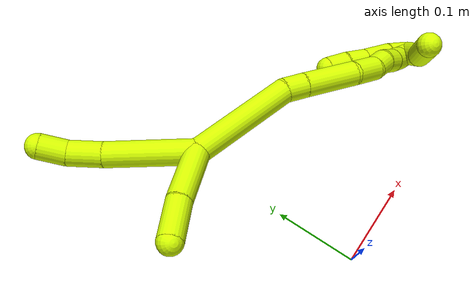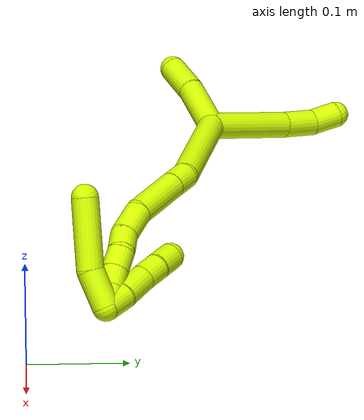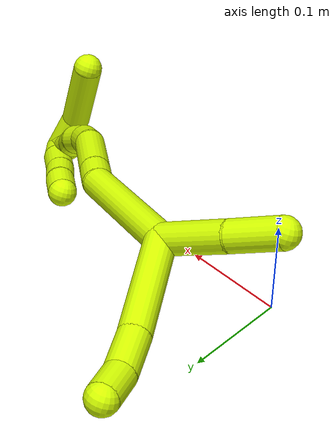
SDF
<sdf version="1.7">
 <world name="default">
  <model name="15">
   <static>0</static>
   <link name="15">
    <collision name="collision-cylinder-e_1_2_8">
     <pose>-0.019177 0.034173 -0.020029 -2.10093 -0.450888 0.761442</pose>
     <geometry><cylinder><radius>0.0125</radius><length>0.088016</length></cylinder></geometry>
     <surface>
      <friction><ode><mu>1.16</mu><mu2>1.16</mu2><slip1>0</slip1><slip2>0</slip2></ode></friction>
      <contact><ode><kp>1e+06</kp><kd>1</kd><max_vel>0</max_vel><min_depth>0.001</min_depth></ode></contact>
     </surface>
    </collision>
    <visual name="visual-cylinder-e_1_2_8">
     <pose>-0.019177 0.034173 -0.020029 -2.10093 -0.450888 0.761442</pose>
     <geometry><cylinder><radius>0.0125</radius><length>0.088016</length></cylinder></geometry>
     <material><ambient>0.835294 1 0 1</ambient></material>
    </visual>
    <collision name="collision-cylinder-e_2_8_9">
     <pose>-0.044866 0.082526 -0.047098 -2.03161 -0.39023 0.617153</pose>
     <geometry><cylinder><radius>0.0125</radius><length>0.034238</length></cylinder></geometry>
     <surface>
      <friction><ode><mu>1.16</mu><mu2>1.16</mu2><slip1>0</slip1><slip2>0</slip2></ode></friction>
      <contact><ode><kp>1e+06</kp><kd>1</kd><max_vel>0</max_vel><min_depth>0.001</min_depth></ode></contact>
     </surface>
    </collision>
    <visual name="visual-cylinder-e_2_8_9">
     <pose>-0.044866 0.082526 -0.047098 -2.03161 -0.39023 0.617153</pose>
     <geometry><cylinder><radius>0.0125</radius><length>0.034238</length></cylinder></geometry>
     <material><ambient>0.835294 1 0 1</ambient></material>
    </visual>
    <collision name="collision-cylinder-e_3_9_6">
     <pose>-0.054659 0.109879 -0.057003 -1.78498 -0.23874 0.295499</pose>
     <geometry><cylinder><radius>0.0125</radius><length>0.027746</length></cylinder></geometry>
     <surface>
      <friction><ode><mu>1.16</mu><mu2>1.16</mu2><slip1>0</slip1><slip2>0</slip2></ode></friction>
      <contact><ode><kp>1e+06</kp><kd>1</kd><max_vel>0</max_vel><min_depth>0.001</min_depth></ode></contact>
     </surface>
    </collision>
    <visual name="visual-cylinder-e_3_9_6">
     <pose>-0.054659 0.109879 -0.057003 -1.78498 -0.23874 0.295499</pose>
     <geometry><cylinder><radius>0.0125</radius><length>0.027746</length></cylinder></geometry>
     <material><ambient>0.835294 1 0 1</ambient></material>
    </visual>
    <collision name="collision-cylinder-e_1_2_10">
     <pose>-0.025168 0.00186 0.015071 -0.122776 -1.0279 0.069374</pose>
     <geometry><cylinder><radius>0.0125</radius><length>0.058788</length></cylinder></geometry>
     <surface>
      <friction><ode><mu>1.16</mu><mu2>1.16</mu2><slip1>0</slip1><slip2>0</slip2></ode></friction>
      <contact><ode><kp>1e+06</kp><kd>1</kd><max_vel>0</max_vel><min_depth>0.001</min_depth></ode></contact>
     </surface>
    </collision>
    <visual name="visual-cylinder-e_1_2_10">
     <pose>-0.025168 0.00186 0.015071 -0.122776 -1.0279 0.069374</pose>
     <geometry><cylinder><radius>0.0125</radius><length>0.058788</length></cylinder></geometry>
     <material><ambient>0.835294 1 0 1</ambient></material>
    </visual>
    <collision name="collision-cylinder-e_2_10_5">
     <pose>-0.068051 0.002454 0.04059 0.12055 -1.03475 -0.068659</pose>
     <geometry><cylinder><radius>0.0125</radius><length>0.041212</length></cylinder></geometry>
     <surface>
      <friction><ode><mu>1.16</mu><mu2>1.16</mu2><slip1>0</slip1><slip2>0</slip2></ode></friction>
      <contact><ode><kp>1e+06</kp><kd>1</kd><max_vel>0</max_vel><min_depth>0.001</min_depth></ode></contact>
     </surface>
    </collision>
    <visual name="visual-cylinder-e_2_10_5">
     <pose>-0.068051 0.002454 0.04059 0.12055 -1.03475 -0.068659</pose>
     <geometry><cylinder><radius>0.0125</radius><length>0.041212</length></cylinder></geometry>
     <material><ambient>0.835294 1 0 1</ambient></material>
    </visual>
    <collision name="collision-cylinder-e_1_2_11">
     <pose>0.047662 -0.027014 -0.005123 1.75821 1.04756 1.21798</pose>
     <geometry><cylinder><radius>0.0125</radius><length>0.110048</length></cylinder></geometry>
     <surface>
      <friction><ode><mu>1.16</mu><mu2>1.16</mu2><slip1>0</slip1><slip2>0</slip2></ode></friction>
      <contact><ode><kp>1e+06</kp><kd>1</kd><max_vel>0</max_vel><min_depth>0.001</min_depth></ode></contact>
     </surface>
    </collision>
    <visual name="visual-cylinder-e_1_2_11">
     <pose>0.047662 -0.027014 -0.005123 1.75821 1.04756 1.21798</pose>
     <geometry><cylinder><radius>0.0125</radius><length>0.110048</length></cylinder></geometry>
     <material><ambient>0.835294 1 0 1</ambient></material>
    </visual>
    <collision name="collision-cylinder-e_2_11_12">
     <pose>0.102983 -0.062373 -0.009876 1.52655 0.742014 0.712589</pose>
     <geometry><cylinder><radius>0.0125</radius><length>0.022668</length></cylinder></geometry>
     <surface>
      <friction><ode><mu>1.16</mu><mu2>1.16</mu2><slip1>0</slip1><slip2>0</slip2></ode></friction>
      <contact><ode><kp>1e+06</kp><kd>1</kd><max_vel>0</max_vel><min_depth>0.001</min_depth></ode></contact>
     </surface>
    </collision>
    <visual name="visual-cylinder-e_2_11_12">
     <pose>0.102983 -0.062373 -0.009876 1.52655 0.742014 0.712589</pose>
     <geometry><cylinder><radius>0.0125</radius><length>0.022668</length></cylinder></geometry>
     <material><ambient>0.835294 1 0 1</ambient></material>
    </visual>
    <collision name="collision-cylinder-e_3_12_13">
     <pose>0.129299 -0.091791 -0.009163 1.55448 0.724638 0.713887</pose>
     <geometry><cylinder><radius>0.0125</radius><length>0.056293</length></cylinder></geometry>
     <surface>
      <friction><ode><mu>1.16</mu><mu2>1.16</mu2><slip1>0</slip1><slip2>0</slip2></ode></friction>
      <contact><ode><kp>1e+06</kp><kd>1</kd><max_vel>0</max_vel><min_depth>0.001</min_depth></ode></contact>
     </surface>
    </collision>
    <visual name="visual-cylinder-e_3_12_13">
     <pose>0.129299 -0.091791 -0.009163 1.55448 0.724638 0.713887</pose>
     <geometry><cylinder><radius>0.0125</radius><length>0.056293</length></cylinder></geometry>
     <material><ambient>0.835294 1 0 1</ambient></material>
    </visual>
    <collision name="collision-cylinder-e_4_13_14">
     <pose>0.157705 -0.123859 -0.012729 1.91245 0.695833 0.949386</pose>
     <geometry><cylinder><radius>0.0125</radius><length>0.030414</length></cylinder></geometry>
     <surface>
      <friction><ode><mu>1.16</mu><mu2>1.16</mu2><slip1>0</slip1><slip2>0</slip2></ode></friction>
      <contact><ode><kp>1e+06</kp><kd>1</kd><max_vel>0</max_vel><min_depth>0.001</min_depth></ode></contact>
     </surface>
    </collision>
    <visual name="visual-cylinder-e_4_13_14">
     <pose>0.157705 -0.123859 -0.012729 1.91245 0.695833 0.949386</pose>
     <geometry><cylinder><radius>0.0125</radius><length>0.030414</length></cylinder></geometry>
     <material><ambient>0.835294 1 0 1</ambient></material>
    </visual>
    <collision name="collision-cylinder-e_5_14_15">
     <pose>0.175069 -0.139936 -0.021084 2.28957 0.845663 1.56232</pose>
     <geometry><cylinder><radius>0.0125</radius><length>0.020353</length></cylinder></geometry>
     <surface>
      <friction><ode><mu>1.16</mu><mu2>1.16</mu2><slip1>0</slip1><slip2>0</slip2></ode></friction>
      <contact><ode><kp>1e+06</kp><kd>1</kd><max_vel>0</max_vel><min_depth>0.001</min_depth></ode></contact>
     </surface>
    </collision>
    <visual name="visual-cylinder-e_5_14_15">
     <pose>0.175069 -0.139936 -0.021084 2.28957 0.845663 1.56232</pose>
     <geometry><cylinder><radius>0.0125</radius><length>0.020353</length></cylinder></geometry>
     <material><ambient>0.835294 1 0 1</ambient></material>
    </visual>
    <collision name="collision-cylinder-e_6_15_16">
     <pose>0.187778 -0.151899 -0.030754 2.22013 0.532545 1.00492</pose>
     <geometry><cylinder><radius>0.0125</radius><length>0.020064</length></cylinder></geometry>
     <surface>
      <friction><ode><mu>1.16</mu><mu2>1.16</mu2><slip1>0</slip1><slip2>0</slip2></ode></friction>
      <contact><ode><kp>1e+06</kp><kd>1</kd><max_vel>0</max_vel><min_depth>0.001</min_depth></ode></contact>
     </surface>
    </collision>
    <visual name="visual-cylinder-e_6_15_16">
     <pose>0.187778 -0.151899 -0.030754 2.22013 0.532545 1.00492</pose>
     <geometry><cylinder><radius>0.0125</radius><length>0.020064</length></cylinder></geometry>
     <material><ambient>0.835294 1 0 1</ambient></material>
    </visual>
    <collision name="collision-cylinder-e_7_16_17">
     <pose>0.19861 -0.164895 -0.041512 2.3064 0.60803 1.23097</pose>
     <geometry><cylinder><radius>0.0125</radius><length>0.020089</length></cylinder></geometry>
     <surface>
      <friction><ode><mu>1.16</mu><mu2>1.16</mu2><slip1>0</slip1><slip2>0</slip2></ode></friction>
      <contact><ode><kp>1e+06</kp><kd>1</kd><max_vel>0</max_vel><min_depth>0.001</min_depth></ode></contact>
     </surface>
    </collision>
    <visual name="visual-cylinder-e_7_16_17">
     <pose>0.19861 -0.164895 -0.041512 2.3064 0.60803 1.23097</pose>
     <geometry><cylinder><radius>0.0125</radius><length>0.020089</length></cylinder></geometry>
     <material><ambient>0.835294 1 0 1</ambient></material>
    </visual>
    <collision name="collision-cylinder-e_8_17_1">
     <pose>0.211396 -0.176565 -0.051535 2.25046 0.778594 1.41933</pose>
     <geometry><cylinder><radius>0.0125</radius><length>0.020072</length></cylinder></geometry>
     <surface>
      <friction><ode><mu>1.16</mu><mu2>1.16</mu2><slip1>0</slip1><slip2>0</slip2></ode></friction>
      <contact><ode><kp>1e+06</kp><kd>1</kd><max_vel>0</max_vel><min_depth>0.001</min_depth></ode></contact>
     </surface>
    </collision>
    <visual name="visual-cylinder-e_8_17_1">
     <pose>0.211396 -0.176565 -0.051535 2.25046 0.778594 1.41933</pose>
     <geometry><cylinder><radius>0.0125</radius><length>0.020072</length></cylinder></geometry>
     <material><ambient>0.835294 1 0 1</ambient></material>
    </visual>
    <collision name="collision-cylinder-e_1_1_18">
     <pose>0.211855 -0.172322 -0.056525 -1.62174 -0.591371 0.620388</pose>
     <geometry><cylinder><radius>0.0125</radius><length>0.02364</length></cylinder></geometry>
     <surface>
      <friction><ode><mu>1.16</mu><mu2>1.16</mu2><slip1>0</slip1><slip2>0</slip2></ode></friction>
      <contact><ode><kp>1e+06</kp><kd>1</kd><max_vel>0</max_vel><min_depth>0.001</min_depth></ode></contact>
     </surface>
    </collision>
    <visual name="visual-cylinder-e_1_1_18">
     <pose>0.211855 -0.172322 -0.056525 -1.62174 -0.591371 0.620388</pose>
     <geometry><cylinder><radius>0.0125</radius><length>0.02364</length></cylinder></geometry>
     <material><ambient>0.835294 1 0 1</ambient></material>
    </visual>
    <collision name="collision-cylinder-e_2_18_19">
     <pose>0.194904 -0.15108 -0.056642 -1.53733 -0.735565 0.713381</pose>
     <geometry><cylinder><radius>0.0125</radius><length>0.030881</length></cylinder></geometry>
     <surface>
      <friction><ode><mu>1.16</mu><mu2>1.16</mu2><slip1>0</slip1><slip2>0</slip2></ode></friction>
      <contact><ode><kp>1e+06</kp><kd>1</kd><max_vel>0</max_vel><min_depth>0.001</min_depth></ode></contact>
     </surface>
    </collision>
    <visual name="visual-cylinder-e_2_18_19">
     <pose>0.194904 -0.15108 -0.056642 -1.53733 -0.735565 0.713381</pose>
     <geometry><cylinder><radius>0.0125</radius><length>0.030881</length></cylinder></geometry>
     <material><ambient>0.835294 1 0 1</ambient></material>
    </visual>
    <collision name="collision-cylinder-e_3_19_20">
     <pose>0.177666 -0.130764 -0.056382 -1.58468 -0.659272 0.667822</pose>
     <geometry><cylinder><radius>0.0125</radius><length>0.022457</length></cylinder></geometry>
     <surface>
      <friction><ode><mu>1.16</mu><mu2>1.16</mu2><slip1>0</slip1><slip2>0</slip2></ode></friction>
      <contact><ode><kp>1e+06</kp><kd>1</kd><max_vel>0</max_vel><min_depth>0.001</min_depth></ode></contact>
     </surface>
    </collision>
    <visual name="visual-cylinder-e_3_19_20">
     <pose>0.177666 -0.130764 -0.056382 -1.58468 -0.659272 0.667822</pose>
     <geometry><cylinder><radius>0.0125</radius><length>0.022457</length></cylinder></geometry>
     <material><ambient>0.835294 1 0 1</ambient></material>
    </visual>
    <collision name="collision-cylinder-e_4_20_4">
     <pose>0.162782 -0.11364 -0.057114 -1.64454 -0.769038 0.821728</pose>
     <geometry><cylinder><radius>0.0125</radius><length>0.023022</length></cylinder></geometry>
     <surface>
      <friction><ode><mu>1.16</mu><mu2>1.16</mu2><slip1>0</slip1><slip2>0</slip2></ode></friction>
      <contact><ode><kp>1e+06</kp><kd>1</kd><max_vel>0</max_vel><min_depth>0.001</min_depth></ode></contact>
     </surface>
    </collision>
    <visual name="visual-cylinder-e_4_20_4">
     <pose>0.162782 -0.11364 -0.057114 -1.64454 -0.769038 0.821728</pose>
     <geometry><cylinder><radius>0.0125</radius><length>0.023022</length></cylinder></geometry>
     <material><ambient>0.835294 1 0 1</ambient></material>
    </visual>
    <collision name="collision-cylinder-e_1_1_21">
     <pose>0.21408 -0.180736 -0.038897 -0.080734 -0.248688 0.010096</pose>
     <geometry><cylinder><radius>0.0125</radius><length>0.035459</length></cylinder></geometry>
     <surface>
      <friction><ode><mu>1.16</mu><mu2>1.16</mu2><slip1>0</slip1><slip2>0</slip2></ode></friction>
      <contact><ode><kp>1e+06</kp><kd>1</kd><max_vel>0</max_vel><min_depth>0.001</min_depth></ode></contact>
     </surface>
    </collision>
    <visual name="visual-cylinder-e_1_1_21">
     <pose>0.21408 -0.180736 -0.038897 -0.080734 -0.248688 0.010096</pose>
     <geometry><cylinder><radius>0.0125</radius><length>0.035459</length></cylinder></geometry>
     <material><ambient>0.835294 1 0 1</ambient></material>
    </visual>
    <collision name="collision-cylinder-e_2_21_3">
     <pose>0.203795 -0.166451 0.007212 -0.418782 -0.184541 0.039323</pose>
     <geometry><cylinder><radius>0.0125</radius><length>0.064541</length></cylinder></geometry>
     <surface>
      <friction><ode><mu>1.16</mu><mu2>1.16</mu2><slip1>0</slip1><slip2>0</slip2></ode></friction>
      <contact><ode><kp>1e+06</kp><kd>1</kd><max_vel>0</max_vel><min_depth>0.001</min_depth></ode></contact>
     </surface>
    </collision>
    <visual name="visual-cylinder-e_2_21_3">
     <pose>0.203795 -0.166451 0.007212 -0.418782 -0.184541 0.039323</pose>
     <geometry><cylinder><radius>0.0125</radius><length>0.064541</length></cylinder></geometry>
     <material><ambient>0.835294 1 0 1</ambient></material>
    </visual>
    <collision name="collision-sphere-3">
     <pose>0.197874 -0.153551 0.036193 0 -0 0</pose>
     <geometry><sphere><radius>0.0125</radius></sphere></geometry>
     <surface>
      <friction><ode><mu>1.16</mu><mu2>1.16</mu2><slip1>0</slip1><slip2>0</slip2></ode></friction>
      <contact><ode><kp>1e+06</kp><kd>1</kd><max_vel>0</max_vel><min_depth>0.001</min_depth></ode></contact>
     </surface>
    </collision>
    <visual name="visual-sphere-3">
     <pose>0.197874 -0.153551 0.036193 0 -0 0</pose>
     <geometry><sphere><radius>0.0125</radius></sphere></geometry>
     <material><ambient>0.835294 1 0 1</ambient></material>
    </visual>
    <collision name="collision-sphere-21">
     <pose>0.209716 -0.17935 -0.021769 0 -0 0</pose>
     <geometry><sphere><radius>0.0125</radius></sphere></geometry>
     <surface>
      <friction><ode><mu>1.16</mu><mu2>1.16</mu2><slip1>0</slip1><slip2>0</slip2></ode></friction>
      <contact><ode><kp>1e+06</kp><kd>1</kd><max_vel>0</max_vel><min_depth>0.001</min_depth></ode></contact>
     </surface>
    </collision>
    <visual name="visual-sphere-21">
     <pose>0.209716 -0.17935 -0.021769 0 -0 0</pose>
     <geometry><sphere><radius>0.0125</radius></sphere></geometry>
     <material><ambient>0.835294 1 0 1</ambient></material>
    </visual>
    <collision name="collision-sphere-4">
     <pose>0.154777 -0.105391 -0.057724 0 -0 0</pose>
     <geometry><sphere><radius>0.0125</radius></sphere></geometry>
     <surface>
      <friction><ode><mu>1.16</mu><mu2>1.16</mu2><slip1>0</slip1><slip2>0</slip2></ode></friction>
      <contact><ode><kp>1e+06</kp><kd>1</kd><max_vel>0</max_vel><min_depth>0.001</min_depth></ode></contact>
     </surface>
    </collision>
    <visual name="visual-sphere-4">
     <pose>0.154777 -0.105391 -0.057724 0 -0 0</pose>
     <geometry><sphere><radius>0.0125</radius></sphere></geometry>
     <material><ambient>0.835294 1 0 1</ambient></material>
    </visual>
    <collision name="collision-sphere-20">
     <pose>0.170788 -0.121889 -0.056505 0 -0 0</pose>
     <geometry><sphere><radius>0.0125</radius></sphere></geometry>
     <surface>
      <friction><ode><mu>1.16</mu><mu2>1.16</mu2><slip1>0</slip1><slip2>0</slip2></ode></friction>
      <contact><ode><kp>1e+06</kp><kd>1</kd><max_vel>0</max_vel><min_depth>0.001</min_depth></ode></contact>
     </surface>
    </collision>
    <visual name="visual-sphere-20">
     <pose>0.170788 -0.121889 -0.056505 0 -0 0</pose>
     <geometry><sphere><radius>0.0125</radius></sphere></geometry>
     <material><ambient>0.835294 1 0 1</ambient></material>
    </visual>
    <collision name="collision-sphere-5">
     <pose>-0.085767 0.001188 0.051038 0 -0 0</pose>
     <geometry><sphere><radius>0.0125</radius></sphere></geometry>
     <surface>
      <friction><ode><mu>1.16</mu><mu2>1.16</mu2><slip1>0</slip1><slip2>0</slip2></ode></friction>
      <contact><ode><kp>1e+06</kp><kd>1</kd><max_vel>0</max_vel><min_depth>0.001</min_depth></ode></contact>
     </surface>
    </collision>
    <visual name="visual-sphere-5">
     <pose>-0.085767 0.001188 0.051038 0 -0 0</pose>
     <geometry><sphere><radius>0.0125</radius></sphere></geometry>
     <material><ambient>0.835294 1 0 1</ambient></material>
    </visual>
    <collision name="collision-sphere-10">
     <pose>-0.050335 0.003719 0.030142 0 -0 0</pose>
     <geometry><sphere><radius>0.0125</radius></sphere></geometry>
     <surface>
      <friction><ode><mu>1.16</mu><mu2>1.16</mu2><slip1>0</slip1><slip2>0</slip2></ode></friction>
      <contact><ode><kp>1e+06</kp><kd>1</kd><max_vel>0</max_vel><min_depth>0.001</min_depth></ode></contact>
     </surface>
    </collision>
    <visual name="visual-sphere-10">
     <pose>-0.050335 0.003719 0.030142 0 -0 0</pose>
     <geometry><sphere><radius>0.0125</radius></sphere></geometry>
     <material><ambient>0.835294 1 0 1</ambient></material>
    </visual>
    <collision name="collision-sphere-6">
     <pose>-0.05794 0.12305 -0.059868 0 -0 0</pose>
     <geometry><sphere><radius>0.0125</radius></sphere></geometry>
     <surface>
      <friction><ode><mu>1.16</mu><mu2>1.16</mu2><slip1>0</slip1><slip2>0</slip2></ode></friction>
      <contact><ode><kp>1e+06</kp><kd>1</kd><max_vel>0</max_vel><min_depth>0.001</min_depth></ode></contact>
     </surface>
    </collision>
    <visual name="visual-sphere-6">
     <pose>-0.05794 0.12305 -0.059868 0 -0 0</pose>
     <geometry><sphere><radius>0.0125</radius></sphere></geometry>
     <material><ambient>0.835294 1 0 1</ambient></material>
    </visual>
    <collision name="collision-sphere-9">
     <pose>-0.051379 0.096707 -0.054138 0 -0 0</pose>
     <geometry><sphere><radius>0.0125</radius></sphere></geometry>
     <surface>
      <friction><ode><mu>1.16</mu><mu2>1.16</mu2><slip1>0</slip1><slip2>0</slip2></ode></friction>
      <contact><ode><kp>1e+06</kp><kd>1</kd><max_vel>0</max_vel><min_depth>0.001</min_depth></ode></contact>
     </surface>
    </collision>
    <visual name="visual-sphere-9">
     <pose>-0.051379 0.096707 -0.054138 0 -0 0</pose>
     <geometry><sphere><radius>0.0125</radius></sphere></geometry>
     <material><ambient>0.835294 1 0 1</ambient></material>
    </visual>
    <collision name="collision-sphere-2">
     <geometry><sphere><radius>0.0125</radius></sphere></geometry>
     <surface>
      <friction><ode><mu>1.16</mu><mu2>1.16</mu2><slip1>0</slip1><slip2>0</slip2></ode></friction>
      <contact><ode><kp>1e+06</kp><kd>1</kd><max_vel>0</max_vel><min_depth>0.001</min_depth></ode></contact>
     </surface>
    </collision>
    <visual name="visual-sphere-2">
     <geometry><sphere><radius>0.0125</radius></sphere></geometry>
     <material><ambient>0.835294 1 0 1</ambient></material>
    </visual>
    <collision name="collision-sphere-19">
     <pose>0.184544 -0.139638 -0.056259 0 -0 0</pose>
     <geometry><sphere><radius>0.0125</radius></sphere></geometry>
     <surface>
      <friction><ode><mu>1.16</mu><mu2>1.16</mu2><slip1>0</slip1><slip2>0</slip2></ode></friction>
      <contact><ode><kp>1e+06</kp><kd>1</kd><max_vel>0</max_vel><min_depth>0.001</min_depth></ode></contact>
     </surface>
    </collision>
    <visual name="visual-sphere-19">
     <pose>0.184544 -0.139638 -0.056259 0 -0 0</pose>
     <geometry><sphere><radius>0.0125</radius></sphere></geometry>
     <material><ambient>0.835294 1 0 1</ambient></material>
    </visual>
    <collision name="collision-sphere-8">
     <pose>-0.038354 0.068346 -0.040057 0 -0 0</pose>
     <geometry><sphere><radius>0.0125</radius></sphere></geometry>
     <surface>
      <friction><ode><mu>1.16</mu><mu2>1.16</mu2><slip1>0</slip1><slip2>0</slip2></ode></friction>
      <contact><ode><kp>1e+06</kp><kd>1</kd><max_vel>0</max_vel><min_depth>0.001</min_depth></ode></contact>
     </surface>
    </collision>
    <visual name="visual-sphere-8">
     <pose>-0.038354 0.068346 -0.040057 0 -0 0</pose>
     <geometry><sphere><radius>0.0125</radius></sphere></geometry>
     <material><ambient>0.835294 1 0 1</ambient></material>
    </visual>
    <collision name="collision-sphere-11">
     <pose>0.095324 -0.054027 -0.010245 0 -0 0</pose>
     <geometry><sphere><radius>0.0125</radius></sphere></geometry>
     <surface>
      <friction><ode><mu>1.16</mu><mu2>1.16</mu2><slip1>0</slip1><slip2>0</slip2></ode></friction>
      <contact><ode><kp>1e+06</kp><kd>1</kd><max_vel>0</max_vel><min_depth>0.001</min_depth></ode></contact>
     </surface>
    </collision>
    <visual name="visual-sphere-11">
     <pose>0.095324 -0.054027 -0.010245 0 -0 0</pose>
     <geometry><sphere><radius>0.0125</radius></sphere></geometry>
     <material><ambient>0.835294 1 0 1</ambient></material>
    </visual>
    <collision name="collision-sphere-12">
     <pose>0.110642 -0.070719 -0.009506 0 -0 0</pose>
     <geometry><sphere><radius>0.0125</radius></sphere></geometry>
     <surface>
      <friction><ode><mu>1.16</mu><mu2>1.16</mu2><slip1>0</slip1><slip2>0</slip2></ode></friction>
      <contact><ode><kp>1e+06</kp><kd>1</kd><max_vel>0</max_vel><min_depth>0.001</min_depth></ode></contact>
     </surface>
    </collision>
    <visual name="visual-sphere-12">
     <pose>0.110642 -0.070719 -0.009506 0 -0 0</pose>
     <geometry><sphere><radius>0.0125</radius></sphere></geometry>
     <material><ambient>0.835294 1 0 1</ambient></material>
    </visual>
    <collision name="collision-sphere-13">
     <pose>0.147957 -0.112862 -0.008819 0 -0 0</pose>
     <geometry><sphere><radius>0.0125</radius></sphere></geometry>
     <surface>
      <friction><ode><mu>1.16</mu><mu2>1.16</mu2><slip1>0</slip1><slip2>0</slip2></ode></friction>
      <contact><ode><kp>1e+06</kp><kd>1</kd><max_vel>0</max_vel><min_depth>0.001</min_depth></ode></contact>
     </surface>
    </collision>
    <visual name="visual-sphere-13">
     <pose>0.147957 -0.112862 -0.008819 0 -0 0</pose>
     <geometry><sphere><radius>0.0125</radius></sphere></geometry>
     <material><ambient>0.835294 1 0 1</ambient></material>
    </visual>
    <collision name="collision-sphere-14">
     <pose>0.167453 -0.134856 -0.01664 0 -0 0</pose>
     <geometry><sphere><radius>0.0125</radius></sphere></geometry>
     <surface>
      <friction><ode><mu>1.16</mu><mu2>1.16</mu2><slip1>0</slip1><slip2>0</slip2></ode></friction>
      <contact><ode><kp>1e+06</kp><kd>1</kd><max_vel>0</max_vel><min_depth>0.001</min_depth></ode></contact>
     </surface>
    </collision>
    <visual name="visual-sphere-14">
     <pose>0.167453 -0.134856 -0.01664 0 -0 0</pose>
     <geometry><sphere><radius>0.0125</radius></sphere></geometry>
     <material><ambient>0.835294 1 0 1</ambient></material>
    </visual>
    <collision name="collision-sphere-15">
     <pose>0.182685 -0.145016 -0.025528 0 -0 0</pose>
     <geometry><sphere><radius>0.0125</radius></sphere></geometry>
     <surface>
      <friction><ode><mu>1.16</mu><mu2>1.16</mu2><slip1>0</slip1><slip2>0</slip2></ode></friction>
      <contact><ode><kp>1e+06</kp><kd>1</kd><max_vel>0</max_vel><min_depth>0.001</min_depth></ode></contact>
     </surface>
    </collision>
    <visual name="visual-sphere-15">
     <pose>0.182685 -0.145016 -0.025528 0 -0 0</pose>
     <geometry><sphere><radius>0.0125</radius></sphere></geometry>
     <material><ambient>0.835294 1 0 1</ambient></material>
    </visual>
    <collision name="collision-sphere-16">
     <pose>0.192872 -0.158783 -0.03598 0 -0 0</pose>
     <geometry><sphere><radius>0.0125</radius></sphere></geometry>
     <surface>
      <friction><ode><mu>1.16</mu><mu2>1.16</mu2><slip1>0</slip1><slip2>0</slip2></ode></friction>
      <contact><ode><kp>1e+06</kp><kd>1</kd><max_vel>0</max_vel><min_depth>0.001</min_depth></ode></contact>
     </surface>
    </collision>
    <visual name="visual-sphere-16">
     <pose>0.192872 -0.158783 -0.03598 0 -0 0</pose>
     <geometry><sphere><radius>0.0125</radius></sphere></geometry>
     <material><ambient>0.835294 1 0 1</ambient></material>
    </visual>
    <collision name="collision-sphere-17">
     <pose>0.204348 -0.171008 -0.047044 0 -0 0</pose>
     <geometry><sphere><radius>0.0125</radius></sphere></geometry>
     <surface>
      <friction><ode><mu>1.16</mu><mu2>1.16</mu2><slip1>0</slip1><slip2>0</slip2></ode></friction>
      <contact><ode><kp>1e+06</kp><kd>1</kd><max_vel>0</max_vel><min_depth>0.001</min_depth></ode></contact>
     </surface>
    </collision>
    <visual name="visual-sphere-17">
     <pose>0.204348 -0.171008 -0.047044 0 -0 0</pose>
     <geometry><sphere><radius>0.0125</radius></sphere></geometry>
     <material><ambient>0.835294 1 0 1</ambient></material>
    </visual>
    <collision name="collision-sphere-1">
     <pose>0.218444 -0.182122 -0.056026 0 -0 0</pose>
     <geometry><sphere><radius>0.0125</radius></sphere></geometry>
     <surface>
      <friction><ode><mu>1.16</mu><mu2>1.16</mu2><slip1>0</slip1><slip2>0</slip2></ode></friction>
      <contact><ode><kp>1e+06</kp><kd>1</kd><max_vel>0</max_vel><min_depth>0.001</min_depth></ode></contact>
     </surface>
    </collision>
    <visual name="visual-sphere-1">
     <pose>0.218444 -0.182122 -0.056026 0 -0 0</pose>
     <geometry><sphere><radius>0.0125</radius></sphere></geometry>
     <material><ambient>0.835294 1 0 1</ambient></material>
    </visual>
    <collision name="collision-sphere-18">
     <pose>0.205265 -0.162523 -0.057025 0 -0 0</pose>
     <geometry><sphere><radius>0.0125</radius></sphere></geometry>
     <surface>
      <friction><ode><mu>1.16</mu><mu2>1.16</mu2><slip1>0</slip1><slip2>0</slip2></ode></friction>
      <contact><ode><kp>1e+06</kp><kd>1</kd><max_vel>0</max_vel><min_depth>0.001</min_depth></ode></contact>
     </surface>
    </collision>
    <visual name="visual-sphere-18">
     <pose>0.205265 -0.162523 -0.057025 0 -0 0</pose>
     <geometry><sphere><radius>0.0125</radius></sphere></geometry>
     <material><ambient>0.835294 1 0 1</ambient></material>
    </visual>
    <inertial>
     <pose>0.087603 -0.064566 -0.018111 0 -0 0</pose>
     <mass>0.75</mass>
     <inertia>
      <ixx>0.000243</ixx>
      <ixy>0</ixy>
      <ixz>0</ixz>
      <iyy>0.000267</iyy>
      <iyz>0</iyz>
      <izz>-4.8e-05</izz>
     </inertia>
    </inertial>
   </link>
   <pose>-0.033254 0.180559 0.226341 0.445766 -0.066587 0.136119</pose>
  </model>
 </world>
</sdf>
